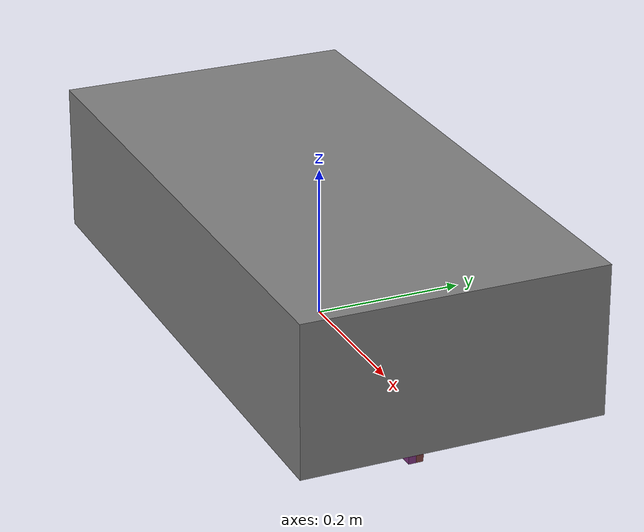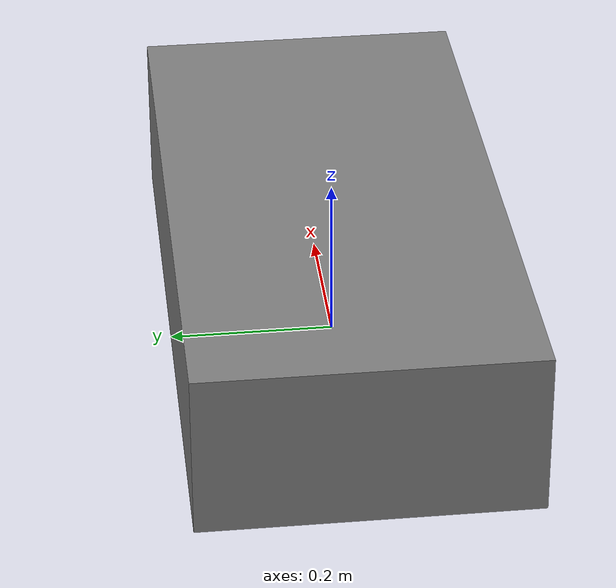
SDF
<?xml version="1.0" ?>
<sdf version="1.7">
  <world name="robosubSimulationV4">

    <gravity>0 0 0</gravity>

    <light name="sun" type="directional">
      <pose>0 0 10 0 0 0</pose>
      <diffuse>1 1 1 1</diffuse>
      <specular>0.5 0.5 0.5 1</specular>
      <direction>0.1 0.1 -1</direction>
      <cast_shadows>true</cast_shadows>
    </light>

    <model name="robosub">

      <link name="robosubBody">
        <pose>0 0 0.1 0 0 0</pose>
        <visual name="visual">
          <geometry><box><size>0.8 0.4 0.2</size></box></geometry>
          <material>
            <ambient>0.5 0.5 0.5 1</ambient>
            <diffuse>0.5 0.5 0.5 1</diffuse>
          </material>
        </visual>
        <collision name="collision">
          <geometry><box><size>0.79 0.39 0.19</size></box></geometry>
        </collision>
      </link>

      <link name="base">
        <pose>0 0 -0.0206 0 0 0</pose>
        <visual name="visual">
          <geometry><box><size>0.01 0.01 0.0412</size></box></geometry>
          <material>
            <ambient>1 0.2 0.2 1</ambient>
            <diffuse>1 0.2 0.2 1</diffuse>
          </material>
        </visual>
        <collision name="collision">
          <geometry><box><size>0.01 0.01 0.0412</size></box></geometry>
        </collision>
      </link>

      <link name="upperarm">
        <pose>0 0 -0.0412 0 0 0</pose>
        <visual name="visual1">
          <pose>-0.104 0 0 0 0 0</pose>
          <geometry><box><size>0.208 0.01 0.01</size></box></geometry>
          <material>
            <ambient>0.2 0.2 1 1</ambient>
            <diffuse>0.2 0.2 1 1</diffuse>
          </material>
        </visual>
        <collision name="collision1">
          <pose>-0.104 0 0 0 0 0</pose>
          <geometry><box><size>0.206 0.009 0.009</size></box></geometry>
        </collision>
        <visual name="visual2">
          <pose>-0.208 0 -0.0146 0 0 0</pose>
          <geometry><box><size>0.01 0.01 0.0292</size></box></geometry>
          <material>
            <ambient>0.2 0.2 1 1</ambient>
            <diffuse>0.2 0.2 1 1</diffuse>
          </material>
        </visual>
        <collision name="collision2">
          <pose>-0.208 0 -0.0146 0 0 0</pose>
          <geometry><box><size>0.009 0.009 0.028</size></box></geometry>
        </collision>
      </link>

      <link name="forearm">
        <pose>-0.208 0 -0.0704 0 0 0</pose>
        <visual name="visual">
          <pose>0.1175 0 0 0 0 0</pose>
          <geometry><box><size>0.235 0.01 0.01</size></box></geometry>
          <material>
            <ambient>0.2 1 0.2 1</ambient>
            <diffuse>0.2 1 0.2 1</diffuse>
          </material>
        </visual>
        <collision name="collision">
          <pose>0.1175 0 0 0 0 0</pose>
          <geometry><box><size>0.233 0.009 0.009</size></box></geometry>
        </collision>
      </link>

      <link name="wrist">
        <pose>0.027 0 -0.0704 0 0 0</pose>
        <visual name="visual">
          <pose>0.07755 0 0 0 0 0</pose>
          <geometry><box><size>0.1551 0.01 0.01</size></box></geometry>
          <material>
            <ambient>0.2 0.5 0.5 1</ambient>
            <diffuse>0.2 0.5 0.5 1</diffuse>
          </material>
        </visual>
        <collision name="collision">
          <pose>0.07755 0 0 0 0 0</pose>
          <geometry><box><size>0.153 0.009 0.009</size></box></geometry>
        </collision>
      </link>

      <link name="hand">
        <pose>0.1871 0 -0.0704 0 0 0</pose>
        <visual name="visual">
          <geometry><box><size>0.01 0.01 0.01</size></box></geometry>
          <material>
            <ambient>1 0.6 0.1 1</ambient>
            <diffuse>1 0.6 0.1 1</diffuse>
          </material>
        </visual>
        <collision name="collision">
          <geometry><box><size>0.01 0.01 0.01</size></box></geometry>
        </collision>
      </link>

      <link name="firstfinger">
        <pose>0.1921 0.005 -0.0704 0 0 0</pose>
        <visual name="visual">
          <pose>0.051 0 0 0 0 0</pose>
          <geometry><box><size>0.102 0.01 0.01</size></box></geometry>
          <material>
            <ambient>0.5 0.25 0.25 1</ambient>
            <diffuse>0.5 0.25 0.25 1</diffuse>
          </material>
        </visual>
        <collision name="collision">
          <pose>0.051 0 0 0 0 0</pose>
          <geometry><box><size>0.102 0.009 0.009</size></box></geometry>
        </collision>
      </link>

      <link name="secondfinger">
        <pose>0.1921 -0.005 -0.0704 0 0 0</pose>
        <visual name="visual">
          <pose>0.051 0 0 0 0 0</pose>
          <geometry><box><size>0.102 0.01 0.01</size></box></geometry>
          <material>
            <ambient>0.5 0.2 0.5 1</ambient>
            <diffuse>0.5 0.2 0.5 1</diffuse>
          </material>
        </visual>
        <collision name="collision">
          <pose>0.051 0 0 0 0 0</pose>
          <geometry><box><size>0.102 0.009 0.009</size></box></geometry>
        </collision>
      </link>

      <joint name="fixedToWorld" type="fixed">
        <parent>world</parent>
        <child>robosubBody</child>
      </joint>

      <joint name="subToBase" type="revolute">
        <parent>robosubBody</parent>
        <child>base</child>
        <axis>
          <xyz>0 0 1</xyz>
          <limit>
            <lower>-0.7854</lower>
            <upper>0.7854</upper>
            <effort>1000000</effort>
          </limit>
        </axis>
      </joint>

      <joint name="baseToUpperarm" type="revolute">
        <parent>base</parent>
        <child>upperarm</child>
        <axis>
          <xyz>0 1 0</xyz>
          <limit><lower>-1.8307</lower><upper>0</upper><effort>1000000</effort></limit>
        </axis>
      </joint>

      <joint name="upperarmToForearm" type="revolute">
        <parent>upperarm</parent>
        <child>forearm</child>
        <axis>
          <xyz>0 -1 0</xyz>
          <limit><lower>-1.6493</lower><upper>0</upper><effort>1000000</effort></limit>
        </axis>
      </joint>

      <joint name="forearmToWrist" type="revolute">
        <parent>forearm</parent>
        <child>wrist</child>
        <axis>
          <xyz>0 1 0</xyz>
          <limit><lower>-0.3491</lower><upper>1.7523</upper><effort>1000000</effort></limit>
        </axis>
      </joint>

      <joint name="wristToHand" type="revolute">
        <parent>wrist</parent>
        <child>hand</child>
        <axis>
          <xyz>1 0 0</xyz>
          <limit><lower>0</lower><upper>4.7124</upper><effort>1000000</effort></limit>
        </axis>
      </joint>

      <joint name="handToFirstfinger" type="revolute">
        <parent>hand</parent>
        <child>firstfinger</child>
        <axis>
          <xyz>0 0 1</xyz>
          <limit><lower>0</lower><upper>0.7854</upper><effort>1000000</effort></limit>
        </axis>
      </joint>

      <joint name="handToSecondfinger" type="revolute">
        <parent>hand</parent>
        <child>secondfinger</child>
        <axis>
          <xyz>0 0 1</xyz>
          <limit><lower>-0.7854</lower><upper>0</upper><effort>1000000</effort></limit>
        </axis>
      </joint>

      <plugin filename="gz-sim-joint-state-publisher-system" name="gz::sim::systems::JointStatePublisher"/>

      <plugin filename="gz-sim-joint-controller-system" name="gz::sim::systems::JointController">
        <joint_name>subToBase</joint_name>
        <topic>/subToBaseTopic</topic>
        <initial_position>0.0</initial_position>
      </plugin>

      <plugin filename="gz-sim-joint-controller-system" name="gz::sim::systems::JointController">
        <joint_name>baseToUpperarm</joint_name>
        <topic>/baseToUpperarmTopic</topic>
        <initial_position>0.0</initial_position>
      </plugin>

      <plugin filename="gz-sim-joint-controller-system" name="gz::sim::systems::JointController">
        <joint_name>upperarmToForearm</joint_name>
        <topic>/upperarmToForearmTopic</topic>
        <initial_position>0.0</initial_position>
      </plugin>

      <plugin filename="gz-sim-joint-controller-system" name="gz::sim::systems::JointController">
        <joint_name>forearmToWrist</joint_name>
        <topic>/forearmToWristTopic</topic>
        <initial_position>0.0</initial_position>
      </plugin>

      <plugin filename="gz-sim-joint-controller-system" name="gz::sim::systems::JointController">
        <joint_name>wristToHand</joint_name>
        <topic>/wristToHandTopic</topic>
        <initial_position>0.0</initial_position>
      </plugin>

      <plugin filename="gz-sim-joint-controller-system" name="gz::sim::systems::JointController">
        <joint_name>handToFirstfinger</joint_name>
        <topic>/handToFirstfingerTopic</topic>
        <initial_position>0.0</initial_position>
      </plugin>

      <plugin filename="gz-sim-joint-controller-system" name="gz::sim::systems::JointController">
        <joint_name>handToSecondfinger</joint_name>
        <topic>/handToSecondfingerTopic</topic>
        <initial_position>0.0</initial_position>
      </plugin>

    </model>
  </world>
</sdf>
